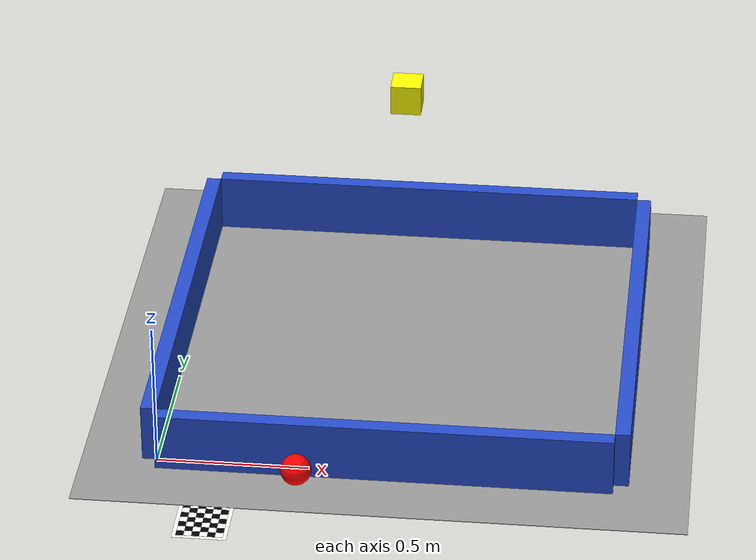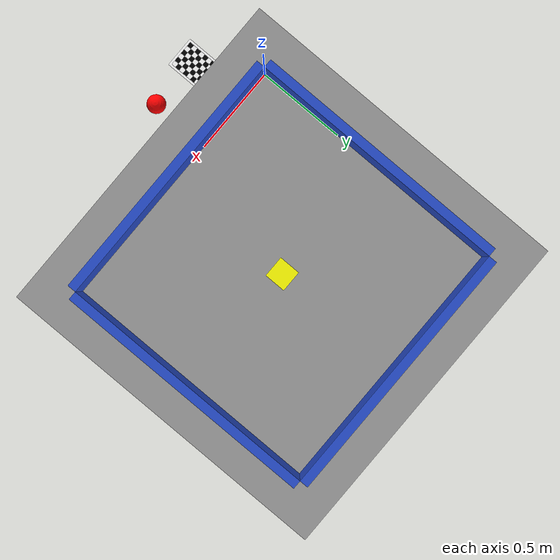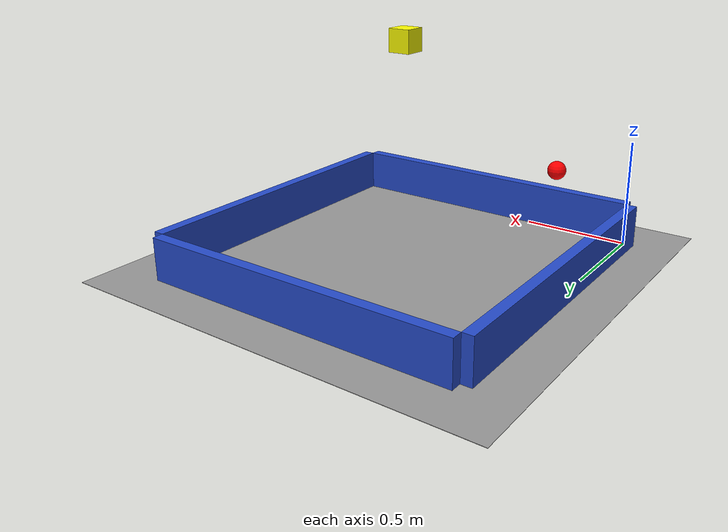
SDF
<?xml version="1.0"?>
<sdf version="1.6">
  <world name="robofetz_arena">
    <physics type="ode">
      <real_time_update_rate>1000</real_time_update_rate>
    </physics>
    <scene>
      <ambient>0.4 0.4 0.4 1</ambient>
      <background>0.7 0.7 0.7 1</background>
    </scene>
    <light name="sun" type="directional">
      <cast_shadows>false</cast_shadows>
      <pose>0 0 10 0 -0 0</pose>
      <diffuse>1 1 1 1</diffuse>
      <specular>0.1 0.1 0.1 1</specular>
      <attenuation>
        <range>1000</range>
        <constant>0.9</constant>
        <linear>0.01</linear>
        <quadratic>0.001</quadratic>
      </attenuation>
      <direction>-0.5 0.5 -1</direction>
    </light>

    <!-- Include the simple arena -->
    <include>
      <uri>model://simple_arena</uri>
    </include>

    <!-- Include the wide angle camera -->
    <include>
      <uri>model://arena_camera_pinhole</uri>
    </include>

    <!-- Include the arena april tag -->
    <include>
      <uri>model://arena_apriltag</uri>
    </include>

    <!-- Include the calibration checkerboard -->
    <include>
      <uri>model://calibration_checkerboard</uri>
    </include>

    <include>
      <uri>model://arena_ball</uri>
    </include>

  </world>
</sdf>

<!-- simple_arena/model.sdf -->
<sdf version="1.6">
  <model name="simple_arena">
    <static>true</static>
    <!-- Ground Plane -->
    <link name="ground_plane">
      <pose>0.75 0.75 0 0 0 0</pose>
      <collision name="collision">
        <geometry>
          <plane>
            <normal>0 0 1</normal>
            <size>2 2</size>
          </plane>
        </geometry>
        <surface>
          <friction>
            <ode>
              <mu>1</mu>
              <mu2>1</mu2>
            </ode>
          </friction>
          <contact>
            <ode/>
          </contact>
        </surface>
      </collision>
      <visual name="visual">
        <geometry>
          <plane>
            <normal>0 0 1</normal>
            <size>2 2</size>
          </plane>
        </geometry>
        <material>
          <script>
            <uri>file://media/materials/scripts/gazebo.material</uri>
            <name>Gazebo/Gray</name>
          </script>
        </material>
      </visual>
    </link>
    <!-- Walls -->
    <link name="wall_north">
      <pose>0.75 1.525 0.1 0 0 0</pose>
      <collision name="collision">
        <geometry>
          <box>
            <size>1.5 0.05 0.2</size>
          </box>
        </geometry>
      </collision>
      <visual name="visual">
        <geometry>
          <box>
            <size>1.5 0.05 0.2</size>
          </box>
        </geometry>
        <material>
          <script>
            <uri>file://media/materials/scripts/gazebo.material</uri>
            <name>Gazebo/Blue</name>
          </script>
        </material>
      </visual>
    </link>
    <link name="wall_south">
      <pose>0.75 -0.025 0.1 0 0 0</pose>
      <collision name="collision">
        <geometry>
          <box>
            <size>1.5 0.05 0.2</size>
          </box>
        </geometry>
      </collision>
      <visual name="visual">
        <geometry>
          <box>
            <size>1.5 0.05 0.2</size>
          </box>
        </geometry>
        <material>
          <script>
            <uri>file://media/materials/scripts/gazebo.material</uri>
            <name>Gazebo/Blue</name>
          </script>
        </material>
      </visual>
    </link>
    <link name="wall_east">
      <pose>1.525 0.75 0.1 0 0 0</pose>
      <collision name="collision">
        <geometry>
          <box>
            <size>0.05 1.5 0.2</size>
          </box>
        </geometry>
      </collision>
      <visual name="visual">
        <geometry>
          <box>
            <size>0.05 1.5 0.2</size>
          </box>
        </geometry>
        <material>
          <script>
            <uri>file://media/materials/scripts/gazebo.material</uri>
            <name>Gazebo/Blue</name>
          </script>
        </material>
      </visual>
    </link>
    <link name="wall_west">
      <pose>-0.025 0.75 0.1 0 0 0</pose>
      <collision name="collision">
        <geometry>
          <box>
            <size>0.05 1.5 0.2</size>
          </box>
        </geometry>
      </collision>
      <visual name="visual">
        <geometry>
          <box>
            <size>0.05 1.5 0.2</size>
          </box>
        </geometry>
        <material>
          <script>
            <uri>file://media/materials/scripts/gazebo.material</uri>
            <name>Gazebo/Blue</name>
          </script>
        </material>
      </visual>
    </link>
  </model>
</sdf>

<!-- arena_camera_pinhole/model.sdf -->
<sdf version="1.9">
  <model name="arena_camera_pinhole">
    <static>true</static>
    <link name="link">
      <pose>0.75 0.75 1.0 0 1.5708 0</pose>

      <!-- Visual element to see the camera -->
      <visual name="camera_visual">
        <geometry>
          <box>
            <size>0.1 0.1 0.1</size>
          </box>
        </geometry>
        <material>
          <ambient>1 1 0 1</ambient> <!-- Yellow -->
          <diffuse>1 1 0 1</diffuse>
        </material>
      </visual>

      <sensor name="arena_camera" type="camera">
        <pose>0 0 0 0 0 0</pose>
        <gz_frame_id>arena_camera_optical</gz_frame_id>
        <frame_id>arena_camera_optical</frame_id> <!-- Future proofing for https://github.com/gazebosim/gz-sensors/pull/444 -->
        <camera name="arena_camera">
          <horizontal_fov>1.689</horizontal_fov>
          <lens>
            <intrinsics>
              <fx>355.923</fx>
              <fy>355.968</fy>
              <cx>399.419</cx>
              <cy>299.149</cy>
              <s>0.0</s>
            </intrinsics>
          </lens>
          <distortion>
            <k1>0.0</k1>
            <k2>0.0</k2>
            <p1>0.0</p1>
            <p2>0.0</p2>
            <k3>0.0</k3>
          </distortion>
          <image>
            <width>800</width>
            <height>600</height>
            <format>R8G8B8</format>
          </image>

          <clip>
            <near>0.01</near>
            <far>2</far>
          </clip>
          <noise>
             <type>gaussian</type>
             <mean>0</mean>
             <stddev>0.007</stddev>
           </noise>
        </camera>
        <always_on>true</always_on>
        <update_rate>30</update_rate>
        <visualize>false</visualize>
        <topic>arena_camera/image</topic>
        <plugin filename="gz-sim-sensors-system" name="gz::sim::systems::Sensors">
          <render_engine>ogre2</render_engine>
          <camera_info_topic>arena_camera/camera_info</camera_info_topic>
          <publish_info_on_image_update>true</publish_info_on_image_update>
          <camera_info_update_rate>30</camera_info_update_rate> <!-- Match image rate -->
        </plugin>
      </sensor>
    </link>
  </model>
</sdf>

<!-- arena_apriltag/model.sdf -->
<sdf version="1.9">
  <model name="arena_apriltag">
    <pose>0.1 0.1 0 0 0 0</pose>
    <static>true</static>
    <link name="link">
      <visual name="visual">
        <geometry>
          <box>
            <size>0.15 0.15 0.001</size>
          </box>
        </geometry>
        <material>
          <ambient>1 1 1 1</ambient>
          <diffuse>1 1 1 1</diffuse>
          <specular>0.5 0.5 0.5 1</specular>
          <pbr>
            <metal>
              <albedo_map>materials/textures/arena_apriltag.png</albedo_map>
              <roughness>0.5</roughness>
              <metalness>0.0</metalness>
            </metal>
          </pbr>
        </material>
      </visual>
      <collision name="collision">
        <geometry>
          <box>
            <size>0.15 0.15 0.001</size>
          </box>
        </geometry>
      </collision>
    </link>
  </model>
</sdf>

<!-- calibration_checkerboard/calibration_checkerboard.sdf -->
<sdf version="1.4">
  <model name="calibration_checkerboard">
  <pose>0.2 -0.3 0.0 0 0 0</pose>
  <static>true</static>
  <link name="calibration_checkerboard">
      <visual name="checker_0_0">
        <pose>-0.06349999999999999 -0.1016 0 0 0 0</pose>
        <geometry>
          <box>
            <size>0.0254 0.0254 0.0002</size>
          </box>
        </geometry>
        <material>
          <ambient>0 0 0 1</ambient>
          <diffuse>0 0 0 1</diffuse>
          <specular>0 0 0 1</specular>
          <emissive>0 0 0 1</emissive>
        </material>
      </visual>
      <visual name="checker_0_1">
        <pose>-0.06349999999999999 -0.0762 0 0 0 0</pose>
        <geometry>
          <box>
            <size>0.0254 0.0254 0.0002</size>
          </box>
        </geometry>
        <material>
          <ambient>1 1 1 1</ambient>
          <diffuse>1 1 1 1</diffuse>
          <specular>1 1 1 1</specular>
          <emissive>1 1 1 1</emissive>
        </material>
      </visual>
      <visual name="checker_0_2">
        <pose>-0.06349999999999999 -0.0508 0 0 0 0</pose>
        <geometry>
          <box>
            <size>0.0254 0.0254 0.0002</size>
          </box>
        </geometry>
        <material>
          <ambient>0 0 0 1</ambient>
          <diffuse>0 0 0 1</diffuse>
          <specular>0 0 0 1</specular>
          <emissive>0 0 0 1</emissive>
        </material>
      </visual>
      <visual name="checker_0_3">
        <pose>-0.06349999999999999 -0.025400000000000006 0 0 0 0</pose>
        <geometry>
          <box>
            <size>0.0254 0.0254 0.0002</size>
          </box>
        </geometry>
        <material>
          <ambient>1 1 1 1</ambient>
          <diffuse>1 1 1 1</diffuse>
          <specular>1 1 1 1</specular>
          <emissive>1 1 1 1</emissive>
        </material>
      </visual>
      <visual name="checker_0_4">
        <pose>-0.06349999999999999 0.0 0 0 0 0</pose>
        <geometry>
          <box>
            <size>0.0254 0.0254 0.0002</size>
          </box>
        </geometry>
        <material>
          <ambient>0 0 0 1</ambient>
          <diffuse>0 0 0 1</diffuse>
          <specular>0 0 0 1</specular>
          <emissive>0 0 0 1</emissive>
        </material>
      </visual>
      <visual name="checker_0_5">
        <pose>-0.06349999999999999 0.025399999999999992 0 0 0 0</pose>
        <geometry>
          <box>
            <size>0.0254 0.0254 0.0002</size>
          </box>
        </geometry>
        <material>
          <ambient>1 1 1 1</ambient>
          <diffuse>1 1 1 1</diffuse>
          <specular>1 1 1 1</specular>
          <emissive>1 1 1 1</emissive>
        </material>
      </visual>
      <visual name="checker_0_6">
        <pose>-0.06349999999999999 0.05079999999999997 0 0 0 0</pose>
        <geometry>
          <box>
            <size>0.0254 0.0254 0.0002</size>
          </box>
        </geometry>
        <material>
          <ambient>0 0 0 1</ambient>
          <diffuse>0 0 0 1</diffuse>
          <specular>0 0 0 1</specular>
          <emissive>0 0 0 1</emissive>
        </material>
      </visual>
      <visual name="checker_0_7">
        <pose>-0.06349999999999999 0.07619999999999998 0 0 0 0</pose>
        <geometry>
          <box>
            <size>0.0254 0.0254 0.0002</size>
          </box>
        </geometry>
        <material>
          <ambient>1 1 1 1</ambient>
          <diffuse>1 1 1 1</diffuse>
          <specular>1 1 1 1</specular>
          <emissive>1 1 1 1</emissive>
        </material>
      </visual>
      <visual name="checker_0_8">
        <pose>-0.06349999999999999 0.10159999999999998 0 0 0 0</pose>
        <geometry>
          <box>
            <size>0.0254 0.0254 0.0002</size>
          </box>
        </geometry>
        <material>
          <ambient>0 0 0 1</ambient>
          <diffuse>0 0 0 1</diffuse>
          <specular>0 0 0 1</specular>
          <emissive>0 0 0 1</emissive>
        </material>
      </visual>
      <visual name="checker_1_0">
        <pose>-0.038099999999999995 -0.1016 0 0 0 0</pose>
        <geometry>
          <box>
            <size>0.0254 0.0254 0.0002</size>
          </box>
        </geometry>
        <material>
          <ambient>1 1 1 1</ambient>
          <diffuse>1 1 1 1</diffuse>
          <specular>1 1 1 1</specular>
          <emissive>1 1 1 1</emissive>
        </material>
      </visual>
      <visual name="checker_1_1">
        <pose>-0.038099999999999995 -0.0762 0 0 0 0</pose>
        <geometry>
          <box>
            <size>0.0254 0.0254 0.0002</size>
          </box>
        </geometry>
        <material>
          <ambient>0 0 0 1</ambient>
          <diffuse>0 0 0 1</diffuse>
          <specular>0 0 0 1</specular>
          <emissive>0 0 0 1</emissive>
        </material>
      </visual>
      <visual name="checker_1_2">
        <pose>-0.038099999999999995 -0.0508 0 0 0 0</pose>
        <geometry>
          <box>
            <size>0.0254 0.0254 0.0002</size>
          </box>
        </geometry>
        <material>
          <ambient>1 1 1 1</ambient>
          <diffuse>1 1 1 1</diffuse>
          <specular>1 1 1 1</specular>
          <emissive>1 1 1 1</emissive>
        </material>
      </visual>
      <visual name="checker_1_3">
        <pose>-0.038099999999999995 -0.025400000000000006 0 0 0 0</pose>
        <geometry>
          <box>
            <size>0.0254 0.0254 0.0002</size>
          </box>
        </geometry>
        <material>
          <ambient>0 0 0 1</ambient>
          <diffuse>0 0 0 1</diffuse>
          <specular>0 0 0 1</specular>
          <emissive>0 0 0 1</emissive>
        </material>
      </visual>
      <visual name="checker_1_4">
        <pose>-0.038099999999999995 0.0 0 0 0 0</pose>
        <geometry>
          <box>
            <size>0.0254 0.0254 0.0002</size>
          </box>
        </geometry>
        <material>
          <ambient>1 1 1 1</ambient>
          <diffuse>1 1 1 1</diffuse>
          <specular>1 1 1 1</specular>
          <emissive>1 1 1 1</emissive>
        </material>
      </visual>
      <visual name="checker_1_5">
        <pose>-0.038099999999999995 0.025399999999999992 0 0 0 0</pose>
        <geometry>
          <box>
            <size>0.0254 0.0254 0.0002</size>
          </box>
        </geometry>
        <material>
          <ambient>0 0 0 1</ambient>
          <diffuse>0 0 0 1</diffuse>
          <specular>0 0 0 1</specular>
          <emissive>0 0 0 1</emissive>
        </material>
      </visual>
      <visual name="checker_1_6">
        <pose>-0.038099999999999995 0.05079999999999997 0 0 0 0</pose>
        <geometry>
          <box>
            <size>0.0254 0.0254 0.0002</size>
          </box>
        </geometry>
        <material>
          <ambient>1 1 1 1</ambient>
          <diffuse>1 1 1 1</diffuse>
          <specular>1 1 1 1</specular>
          <emissive>1 1 1 1</emissive>
        </material>
      </visual>
      <visual name="checker_1_7">
        <pose>-0.038099999999999995 0.07619999999999998 0 0 0 0</pose>
        <geometry>
          <box>
            <size>0.0254 0.0254 0.0002</size>
          </box>
        </geometry>
        <material>
          <ambient>0 0 0 1</ambient>
          <diffuse>0 0 0 1</diffuse>
          <specular>0 0 0 1</specular>
          <emissive>0 0 0 1</emissive>
        </material>
      </visual>
      <visual name="checker_1_8">
        <pose>-0.038099999999999995 0.10159999999999998 0 0 0 0</pose>
        <geometry>
          <box>
            <size>0.0254 0.0254 0.0002</size>
          </box>
        </geometry>
        <material>
          <ambient>1 1 1 1</ambient>
          <diffuse>1 1 1 1</diffuse>
          <specular>1 1 1 1</specular>
          <emissive>1 1 1 1</emissive>
        </material>
      </visual>
      <visual name="checker_2_0">
        <pose>-0.012699999999999989 -0.1016 0 0 0 0</pose>
        <geometry>
          <box>
            <size>0.0254 0.0254 0.0002</size>
          </box>
        </geometry>
        <material>
          <ambient>0 0 0 1</ambient>
          <diffuse>0 0 0 1</diffuse>
          <specular>0 0 0 1</specular>
          <emissive>0 0 0 1</emissive>
        </material>
      </visual>
      <visual name="checker_2_1">
        <pose>-0.012699999999999989 -0.0762 0 0 0 0</pose>
        <geometry>
          <box>
            <size>0.0254 0.0254 0.0002</size>
          </box>
        </geometry>
        <material>
          <ambient>1 1 1 1</ambient>
          <diffuse>1 1 1 1</diffuse>
          <specular>1 1 1 1</specular>
          <emissive>1 1 1 1</emissive>
        </material>
      </visual>
      <visual name="checker_2_2">
        <pose>-0.012699999999999989 -0.0508 0 0 0 0</pose>
        <geometry>
          <box>
            <size>0.0254 0.0254 0.0002</size>
          </box>
        </geometry>
        <material>
          <ambient>0 0 0 1</ambient>
          <diffuse>0 0 0 1</diffuse>
          <specular>0 0 0 1</specular>
          <emissive>0 0 0 1</emissive>
        </material>
      </visual>
      <visual name="checker_2_3">
        <pose>-0.012699999999999989 -0.025400000000000006 0 0 0 0</pose>
        <geometry>
          <box>
            <size>0.0254 0.0254 0.0002</size>
          </box>
        </geometry>
        <material>
          <ambient>1 1 1 1</ambient>
          <diffuse>1 1 1 1</diffuse>
          <specular>1 1 1 1</specular>
          <emissive>1 1 1 1</emissive>
        </material>
      </visual>
      <visual name="checker_2_4">
        <pose>-0.012699999999999989 0.0 0 0 0 0</pose>
        <geometry>
          <box>
            <size>0.0254 0.0254 0.0002</size>
          </box>
        </geometry>
        <material>
          <ambient>0 0 0 1</ambient>
          <diffuse>0 0 0 1</diffuse>
          <specular>0 0 0 1</specular>
          <emissive>0 0 0 1</emissive>
        </material>
      </visual>
      <visual name="checker_2_5">
        <pose>-0.012699999999999989 0.025399999999999992 0 0 0 0</pose>
        <geometry>
          <box>
            <size>0.0254 0.0254 0.0002</size>
          </box>
        </geometry>
        <material>
          <ambient>1 1 1 1</ambient>
          <diffuse>1 1 1 1</diffuse>
          <specular>1 1 1 1</specular>
          <emissive>1 1 1 1</emissive>
        </material>
      </visual>
      <visual name="checker_2_6">
        <pose>-0.012699999999999989 0.05079999999999997 0 0 0 0</pose>
        <geometry>
          <box>
            <size>0.0254 0.0254 0.0002</size>
          </box>
        </geometry>
        <material>
          <ambient>0 0 0 1</ambient>
          <diffuse>0 0 0 1</diffuse>
          <specular>0 0 0 1</specular>
          <emissive>0 0 0 1</emissive>
        </material>
      </visual>
      <visual name="checker_2_7">
        <pose>-0.012699999999999989 0.07619999999999998 0 0 0 0</pose>
        <geometry>
          <box>
            <size>0.0254 0.0254 0.0002</size>
          </box>
        </geometry>
        <material>
          <ambient>1 1 1 1</ambient>
          <diffuse>1 1 1 1</diffuse>
          <specular>1 1 1 1</specular>
          <emissive>1 1 1 1</emissive>
        </material>
      </visual>
      <visual name="checker_2_8">
        <pose>-0.012699999999999989 0.10159999999999998 0 0 0 0</pose>
        <geometry>
          <box>
            <size>0.0254 0.0254 0.0002</size>
          </box>
        </geometry>
        <material>
          <ambient>0 0 0 1</ambient>
          <diffuse>0 0 0 1</diffuse>
          <specular>0 0 0 1</specular>
          <emissive>0 0 0 1</emissive>
        </material>
      </visual>
      <visual name="checker_3_0">
        <pose>0.012700000000000003 -0.1016 0 0 0 0</pose>
        <geometry>
          <box>
            <size>0.0254 0.0254 0.0002</size>
          </box>
        </geometry>
        <material>
          <ambient>1 1 1 1</ambient>
          <diffuse>1 1 1 1</diffuse>
          <specular>1 1 1 1</specular>
          <emissive>1 1 1 1</emissive>
        </material>
      </visual>
      <visual name="checker_3_1">
        <pose>0.012700000000000003 -0.0762 0 0 0 0</pose>
        <geometry>
          <box>
            <size>0.0254 0.0254 0.0002</size>
          </box>
        </geometry>
        <material>
          <ambient>0 0 0 1</ambient>
          <diffuse>0 0 0 1</diffuse>
          <specular>0 0 0 1</specular>
          <emissive>0 0 0 1</emissive>
        </material>
      </visual>
      <visual name="checker_3_2">
        <pose>0.012700000000000003 -0.0508 0 0 0 0</pose>
        <geometry>
          <box>
            <size>0.0254 0.0254 0.0002</size>
          </box>
        </geometry>
        <material>
          <ambient>1 1 1 1</ambient>
          <diffuse>1 1 1 1</diffuse>
          <specular>1 1 1 1</specular>
          <emissive>1 1 1 1</emissive>
        </material>
      </visual>
      <visual name="checker_3_3">
        <pose>0.012700000000000003 -0.025400000000000006 0 0 0 0</pose>
        <geometry>
          <box>
            <size>0.0254 0.0254 0.0002</size>
          </box>
        </geometry>
        <material>
          <ambient>0 0 0 1</ambient>
          <diffuse>0 0 0 1</diffuse>
          <specular>0 0 0 1</specular>
          <emissive>0 0 0 1</emissive>
        </material>
      </visual>
      <visual name="checker_3_4">
        <pose>0.012700000000000003 0.0 0 0 0 0</pose>
        <geometry>
          <box>
            <size>0.0254 0.0254 0.0002</size>
          </box>
        </geometry>
        <material>
          <ambient>1 1 1 1</ambient>
          <diffuse>1 1 1 1</diffuse>
          <specular>1 1 1 1</specular>
          <emissive>1 1 1 1</emissive>
        </material>
      </visual>
      <visual name="checker_3_5">
        <pose>0.012700000000000003 0.025399999999999992 0 0 0 0</pose>
        <geometry>
          <box>
            <size>0.0254 0.0254 0.0002</size>
          </box>
        </geometry>
        <material>
          <ambient>0 0 0 1</ambient>
          <diffuse>0 0 0 1</diffuse>
          <specular>0 0 0 1</specular>
          <emissive>0 0 0 1</emissive>
        </material>
      </visual>
      <visual name="checker_3_6">
        <pose>0.012700000000000003 0.05079999999999997 0 0 0 0</pose>
        <geometry>
          <box>
            <size>0.0254 0.0254 0.0002</size>
          </box>
        </geometry>
        <material>
          <ambient>1 1 1 1</ambient>
          <diffuse>1 1 1 1</diffuse>
          <specular>1 1 1 1</specular>
          <emissive>1 1 1 1</emissive>
        </material>
      </visual>
      <visual name="checker_3_7">
        <pose>0.012700000000000003 0.07619999999999998 0 0 0 0</pose>
        <geometry>
          <box>
            <size>0.0254 0.0254 0.0002</size>
          </box>
        </geometry>
        <material>
          <ambient>0 0 0 1</ambient>
          <diffuse>0 0 0 1</diffuse>
          <specular>0 0 0 1</specular>
          <emissive>0 0 0 1</emissive>
        </material>
      </visual>
      <visual name="checker_3_8">
        <pose>0.012700000000000003 0.10159999999999998 0 0 0 0</pose>
        <geometry>
          <box>
            <size>0.0254 0.0254 0.0002</size>
          </box>
        </geometry>
        <material>
          <ambient>1 1 1 1</ambient>
          <diffuse>1 1 1 1</diffuse>
          <specular>1 1 1 1</specular>
          <emissive>1 1 1 1</emissive>
        </material>
      </visual>
      <visual name="checker_4_0">
        <pose>0.03810000000000001 -0.1016 0 0 0 0</pose>
        <geometry>
          <box>
            <size>0.0254 0.0254 0.0002</size>
          </box>
        </geometry>
        <material>
          <ambient>0 0 0 1</ambient>
          <diffuse>0 0 0 1</diffuse>
          <specular>0 0 0 1</specular>
          <emissive>0 0 0 1</emissive>
        </material>
      </visual>
      <visual name="checker_4_1">
        <pose>0.03810000000000001 -0.0762 0 0 0 0</pose>
        <geometry>
          <box>
            <size>0.0254 0.0254 0.0002</size>
          </box>
        </geometry>
        <material>
          <ambient>1 1 1 1</ambient>
          <diffuse>1 1 1 1</diffuse>
          <specular>1 1 1 1</specular>
          <emissive>1 1 1 1</emissive>
        </material>
      </visual>
      <visual name="checker_4_2">
        <pose>0.03810000000000001 -0.0508 0 0 0 0</pose>
        <geometry>
          <box>
            <size>0.0254 0.0254 0.0002</size>
          </box>
        </geometry>
        <material>
          <ambient>0 0 0 1</ambient>
          <diffuse>0 0 0 1</diffuse>
          <specular>0 0 0 1</specular>
          <emissive>0 0 0 1</emissive>
        </material>
      </visual>
      <visual name="checker_4_3">
        <pose>0.03810000000000001 -0.025400000000000006 0 0 0 0</pose>
        <geometry>
          <box>
            <size>0.0254 0.0254 0.0002</size>
          </box>
        </geometry>
        <material>
          <ambient>1 1 1 1</ambient>
          <diffuse>1 1 1 1</diffuse>
          <specular>1 1 1 1</specular>
          <emissive>1 1 1 1</emissive>
        </material>
      </visual>
      <visual name="checker_4_4">
        <pose>0.03810000000000001 0.0 0 0 0 0</pose>
        <geometry>
          <box>
            <size>0.0254 0.0254 0.0002</size>
          </box>
        </geometry>
        <material>
          <ambient>0 0 0 1</ambient>
          <diffuse>0 0 0 1</diffuse>
          <specular>0 0 0 1</specular>
          <emissive>0 0 0 1</emissive>
        </material>
      </visual>
      <visual name="checker_4_5">
        <pose>0.03810000000000001 0.025399999999999992 0 0 0 0</pose>
        <geometry>
          <box>
            <size>0.0254 0.0254 0.0002</size>
          </box>
        </geometry>
        <material>
          <ambient>1 1 1 1</ambient>
          <diffuse>1 1 1 1</diffuse>
          <specular>1 1 1 1</specular>
          <emissive>1 1 1 1</emissive>
        </material>
      </visual>
      <visual name="checker_4_6">
        <pose>0.03810000000000001 0.05079999999999997 0 0 0 0</pose>
        <geometry>
          <box>
            <size>0.0254 0.0254 0.0002</size>
          </box>
        </geometry>
        <material>
          <ambient>0 0 0 1</ambient>
          <diffuse>0 0 0 1</diffuse>
          <specular>0 0 0 1</specular>
          <emissive>0 0 0 1</emissive>
        </material>
      </visual>
      <visual name="checker_4_7">
        <pose>0.03810000000000001 0.07619999999999998 0 0 0 0</pose>
        <geometry>
          <box>
            <size>0.0254 0.0254 0.0002</size>
          </box>
        </geometry>
        <material>
          <ambient>1 1 1 1</ambient>
          <diffuse>1 1 1 1</diffuse>
          <specular>1 1 1 1</specular>
          <emissive>1 1 1 1</emissive>
        </material>
      </visual>
      <visual name="checker_4_8">
        <pose>0.03810000000000001 0.10159999999999998 0 0 0 0</pose>
        <geometry>
          <box>
            <size>0.0254 0.0254 0.0002</size>
          </box>
        </geometry>
        <material>
          <ambient>0 0 0 1</ambient>
          <diffuse>0 0 0 1</diffuse>
          <specular>0 0 0 1</specular>
          <emissive>0 0 0 1</emissive>
        </material>
      </visual>
      <visual name="checker_5_0">
        <pose>0.0635 -0.1016 0 0 0 0</pose>
        <geometry>
          <box>
            <size>0.0254 0.0254 0.0002</size>
          </box>
        </geometry>
        <material>
          <ambient>1 1 1 1</ambient>
          <diffuse>1 1 1 1</diffuse>
          <specular>1 1 1 1</specular>
          <emissive>1 1 1 1</emissive>
        </material>
      </visual>
      <visual name="checker_5_1">
        <pose>0.0635 -0.0762 0 0 0 0</pose>
        <geometry>
          <box>
            <size>0.0254 0.0254 0.0002</size>
          </box>
        </geometry>
        <material>
          <ambient>0 0 0 1</ambient>
          <diffuse>0 0 0 1</diffuse>
          <specular>0 0 0 1</specular>
          <emissive>0 0 0 1</emissive>
        </material>
      </visual>
      <visual name="checker_5_2">
        <pose>0.0635 -0.0508 0 0 0 0</pose>
        <geometry>
          <box>
            <size>0.0254 0.0254 0.0002</size>
          </box>
        </geometry>
        <material>
          <ambient>1 1 1 1</ambient>
          <diffuse>1 1 1 1</diffuse>
          <specular>1 1 1 1</specular>
          <emissive>1 1 1 1</emissive>
        </material>
      </visual>
      <visual name="checker_5_3">
        <pose>0.0635 -0.025400000000000006 0 0 0 0</pose>
        <geometry>
          <box>
            <size>0.0254 0.0254 0.0002</size>
          </box>
        </geometry>
        <material>
          <ambient>0 0 0 1</ambient>
          <diffuse>0 0 0 1</diffuse>
          <specular>0 0 0 1</specular>
          <emissive>0 0 0 1</emissive>
        </material>
      </visual>
      <visual name="checker_5_4">
        <pose>0.0635 0.0 0 0 0 0</pose>
        <geometry>
          <box>
            <size>0.0254 0.0254 0.0002</size>
          </box>
        </geometry>
        <material>
          <ambient>1 1 1 1</ambient>
          <diffuse>1 1 1 1</diffuse>
          <specular>1 1 1 1</specular>
          <emissive>1 1 1 1</emissive>
        </material>
      </visual>
      <visual name="checker_5_5">
        <pose>0.0635 0.025399999999999992 0 0 0 0</pose>
        <geometry>
          <box>
            <size>0.0254 0.0254 0.0002</size>
          </box>
        </geometry>
        <material>
          <ambient>0 0 0 1</ambient>
          <diffuse>0 0 0 1</diffuse>
          <specular>0 0 0 1</specular>
          <emissive>0 0 0 1</emissive>
        </material>
      </visual>
      <visual name="checker_5_6">
        <pose>0.0635 0.05079999999999997 0 0 0 0</pose>
        <geometry>
          <box>
            <size>0.0254 0.0254 0.0002</size>
          </box>
        </geometry>
        <material>
          <ambient>1 1 1 1</ambient>
          <diffuse>1 1 1 1</diffuse>
          <specular>1 1 1 1</specular>
          <emissive>1 1 1 1</emissive>
        </material>
      </visual>
      <visual name="checker_5_7">
        <pose>0.0635 0.07619999999999998 0 0 0 0</pose>
        <geometry>
          <box>
            <size>0.0254 0.0254 0.0002</size>
          </box>
        </geometry>
        <material>
          <ambient>0 0 0 1</ambient>
          <diffuse>0 0 0 1</diffuse>
          <specular>0 0 0 1</specular>
          <emissive>0 0 0 1</emissive>
        </material>
      </visual>
      <visual name="checker_5_8">
        <pose>0.0635 0.10159999999999998 0 0 0 0</pose>
        <geometry>
          <box>
            <size>0.0254 0.0254 0.0002</size>
          </box>
        </geometry>
        <material>
          <ambient>1 1 1 1</ambient>
          <diffuse>1 1 1 1</diffuse>
          <specular>1 1 1 1</specular>
          <emissive>1 1 1 1</emissive>
        </material>
      </visual>
      <visual name="checker_backdrop">
        <pose>0.0 0.0 -0.0001 0 0 0</pose>
        <geometry>
          <box>
            <size>0.17779999999999999 0.254 0.0001</size>
          </box>
        </geometry>
        <material>
          <ambient>1 1 1 1</ambient>
          <diffuse>1 1 1 1</diffuse>
          <specular>1 1 1 1</specular>
          <emissive>1 1 1 1</emissive>
        </material>
      </visual>    <collision name="collision">
        <pose>0.0 0.0 -0.0001 0 0 0</pose>
        <geometry>
          <box>
            <size>0.17779999999999999 0.254 0.0001</size>
          </box>
        </geometry>
    </collision>
    </link>
  </model>
</sdf>

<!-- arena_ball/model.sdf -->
<sdf version='1.9'>
  <model name='ball'>
    <link name='link'>
      <pose>0.5 -0.3 0.2 0 0 0</pose>
      <inertial>
        <mass>1</mass>
        <inertia>
          <ixx>0.01</ixx>
          <ixy>0</ixy>
          <ixz>0</ixz>
          <iyy>0.01</iyy>
          <iyz>0</iyz>
          <izz>0.01</izz>
        </inertia>
      </inertial>
      <visual name='visual'>
        <geometry>
          <sphere>
            <radius>0.05</radius>
          </sphere>
        </geometry>
        <material>
          <diffuse>1 0 0 1</diffuse> <!-- Red color -->
        </material>
      </visual>
      <collision name='collision'>
        <geometry>
          <sphere>
            <radius>0.05</radius>
          </sphere>
        </geometry>
      </collision>
    </link>
  </model>
</sdf>
